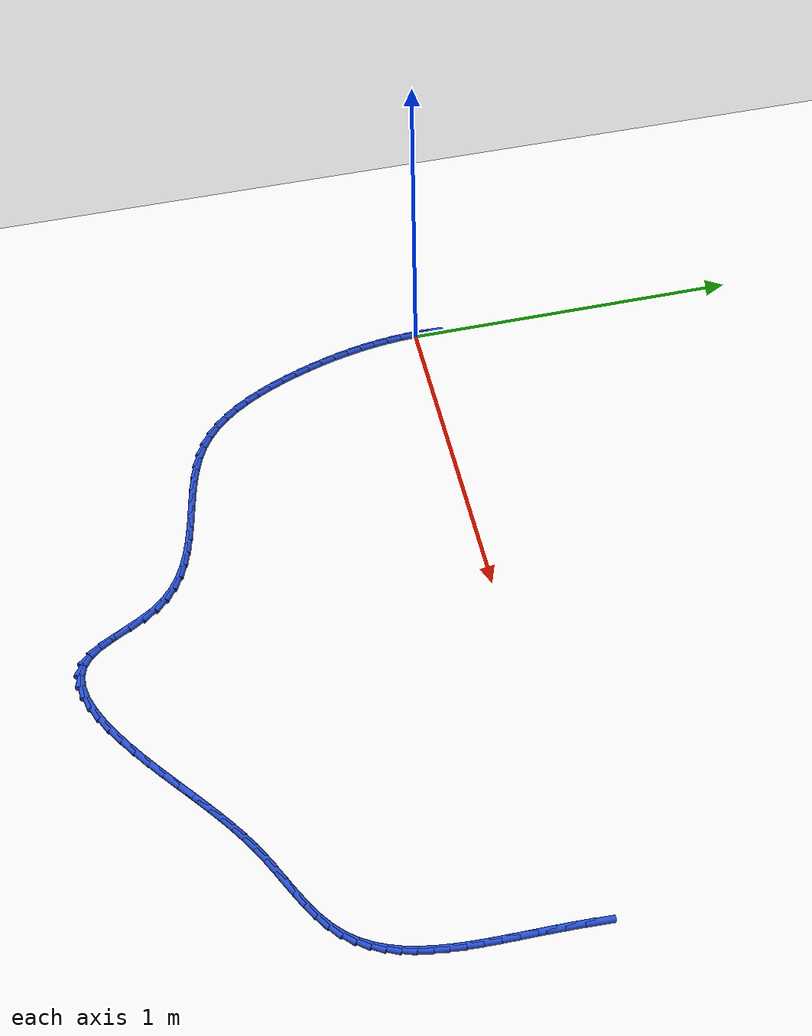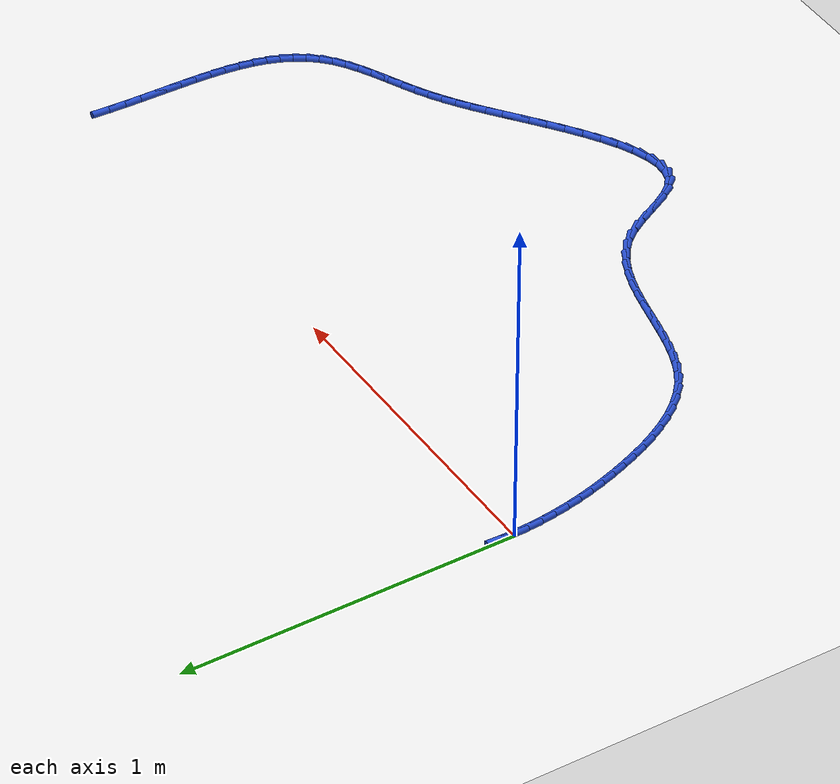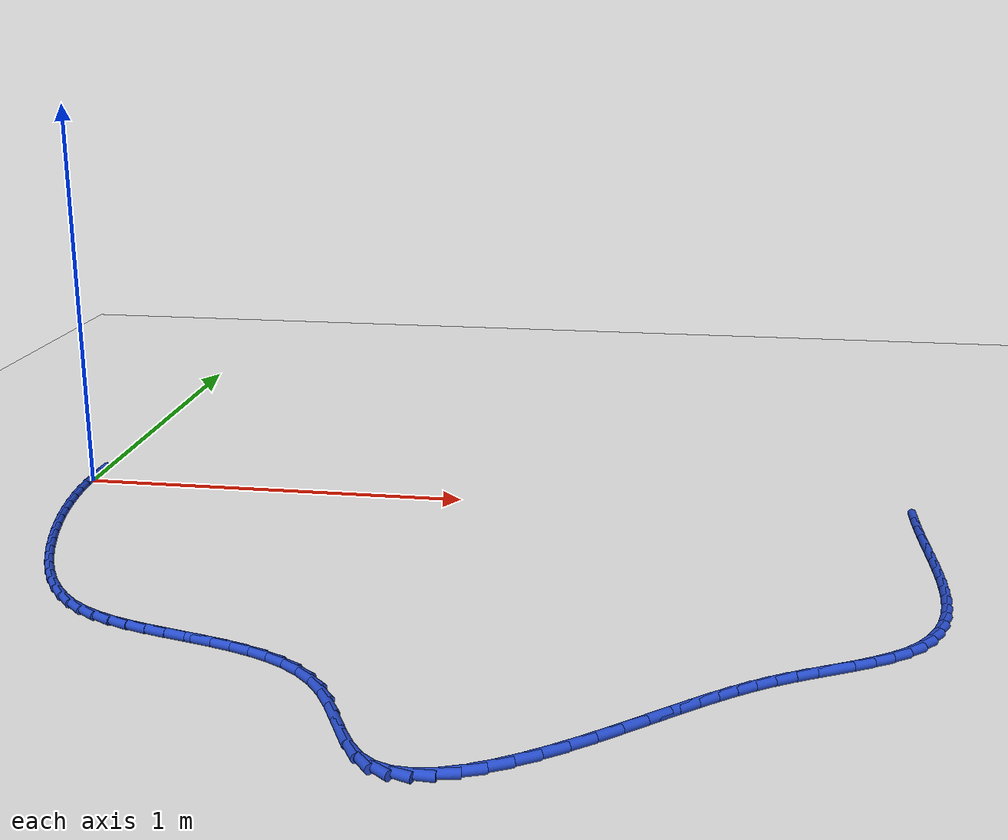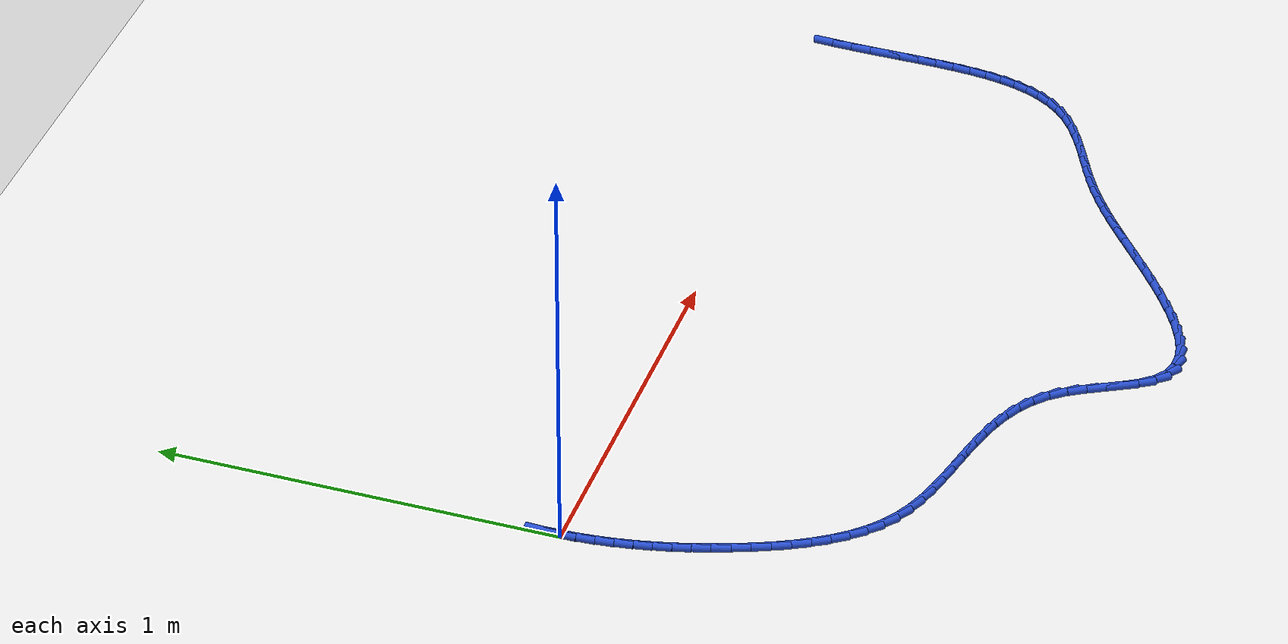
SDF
<sdf version="1.6">
 <world name="default">
  <model name="ground_plane">
   <static>1</static>
   <link name="link">
    <collision name="collision">
     <geometry><plane><normal>0 0 1</normal><size>100 100</size></plane></geometry>
     <surface><friction><ode><mu>100</mu><mu2>50</mu2></ode></friction></surface>
    </collision>
    <visual name="visual">
     <cast_shadows>0</cast_shadows>
     <geometry><plane><normal>0 0 1</normal><size>100 100</size></plane></geometry>
     <material>
      <script><uri>file://media/materials/scripts/gazebo.material</uri><name>Gazebo/WhiteGlow</name></script>
     </material>
    </visual>
   </link>
  </model>
  <model name="line">
   <link name="link_0">
    <pose>1.734723475976807e-17 -8.326672684688674e-17 0.01 0 1.57 -1.567020768808799</pose>
    <collision name="collision">
     <geometry><cylinder><radius>0.01</radius><length>0.08</length></cylinder></geometry>
    </collision>
    <visual name="visual">
     <material>
      <script><name>Gazebo/Blue</name><uri>file://media/materials/scripts/gazebo.material</uri></script>
     </material>
     <geometry><cylinder><radius>0.01</radius><length>0.08</length></cylinder></geometry>
    </visual>
   </link>
   <link name="link_1">
    <pose>-0.0001716113039923914 0.045453013618936146 0.01 0 1.57 1.531060291461525</pose>
    <collision name="collision">
     <geometry><cylinder><radius>0.01</radius><length>0.08</length></cylinder></geometry>
    </collision>
    <visual name="visual">
     <material>
      <script><name>Gazebo/Blue</name><uri>file://media/materials/scripts/gazebo.material</uri></script>
     </material>
     <geometry><cylinder><radius>0.01</radius><length>0.08</length></cylinder></geometry>
    </visual>
   </link>
   <link name="link_82">
    <pose>2.129652075663558 0.005812956764645327 0.01 0 1.57 1.5233397848434216</pose>
    <collision name="collision">
     <geometry><cylinder><radius>0.01</radius><length>0.08</length></cylinder></geometry>
    </collision>
    <visual name="visual">
     <material>
      <script><name>Gazebo/Blue</name><uri>file://media/materials/scripts/gazebo.material</uri></script>
     </material>
     <geometry><cylinder><radius>0.01</radius><length>0.08</length></cylinder></geometry>
    </visual>
   </link>
   <link name="link_83">
    <pose>2.1271858028386226 -0.046117103777714316 0.01 0 1.57 1.5434662299938682</pose>
    <collision name="collision">
     <geometry><cylinder><radius>0.01</radius><length>0.08</length></cylinder></geometry>
    </collision>
    <visual name="visual">
     <material>
      <script><name>Gazebo/Blue</name><uri>file://media/materials/scripts/gazebo.material</uri></script>
     </material>
     <geometry><cylinder><radius>0.01</radius><length>0.08</length></cylinder></geometry>
    </visual>
   </link>
   <link name="link_84">
    <pose>2.125784889536522 -0.0973633360265729 0.01 0 1.57 1.5560762229838552</pose>
    <collision name="collision">
     <geometry><cylinder><radius>0.01</radius><length>0.08</length></cylinder></geometry>
    </collision>
    <visual name="visual">
     <material>
      <script><name>Gazebo/Blue</name><uri>file://media/materials/scripts/gazebo.material</uri></script>
     </material>
     <geometry><cylinder><radius>0.01</radius><length>0.08</length></cylinder></geometry>
    </visual>
   </link>
   <link name="link_85">
    <pose>2.1250425952362004 -0.1477869400494698 0.01 0 1.57 1.5608816851195328</pose>
    <collision name="collision">
     <geometry><cylinder><radius>0.01</radius><length>0.08</length></cylinder></geometry>
    </collision>
    <visual name="visual">
     <material>
      <script><name>Gazebo/Blue</name><uri>file://media/materials/scripts/gazebo.material</uri></script>
     </material>
     <geometry><cylinder><radius>0.01</radius><length>0.08</length></cylinder></geometry>
    </visual>
   </link>
   <link name="link_86">
    <pose>2.124552179416604 -0.1972491159139445 0.01 0 1.57 1.5574544412542528</pose>
    <collision name="collision">
     <geometry><cylinder><radius>0.01</radius><length>0.08</length></cylinder></geometry>
    </collision>
    <visual name="visual">
     <material>
      <script><name>Gazebo/Blue</name><uri>file://media/materials/scripts/gazebo.material</uri></script>
     </material>
     <geometry><cylinder><radius>0.01</radius><length>0.08</length></cylinder></geometry>
    </visual>
   </link>
   <link name="link_87">
    <pose>2.123906901556674 -0.245611063687537 0.01 0 1.57 1.5451905992392905</pose>
    <collision name="collision">
     <geometry><cylinder><radius>0.01</radius><length>0.08</length></cylinder></geometry>
    </collision>
    <visual name="visual">
     <material>
      <script><name>Gazebo/Blue</name><uri>file://media/materials/scripts/gazebo.material</uri></script>
     </material>
     <geometry><cylinder><radius>0.01</radius><length>0.08</length></cylinder></geometry>
    </visual>
   </link>
   <link name="link_88">
    <pose>2.1227000211353575 -0.2927339834377851 0.01 0 1.57 1.523281146981574</pose>
    <collision name="collision">
     <geometry><cylinder><radius>0.01</radius><length>0.08</length></cylinder></geometry>
    </collision>
    <visual name="visual">
     <material>
      <script><name>Gazebo/Blue</name><uri>file://media/materials/scripts/gazebo.material</uri></script>
     </material>
     <geometry><cylinder><radius>0.01</radius><length>0.08</length></cylinder></geometry>
    </visual>
   </link>
   <link name="link_89">
    <pose>2.120524797631598 -0.3384790752322292 0.01 0 1.57 1.4906960799743154</pose>
    <collision name="collision">
     <geometry><cylinder><radius>0.01</radius><length>0.08</length></cylinder></geometry>
    </collision>
    <visual name="visual">
     <material>
      <script><name>Gazebo/Blue</name><uri>file://media/materials/scripts/gazebo.material</uri></script>
     </material>
     <geometry><cylinder><radius>0.01</radius><length>0.08</length></cylinder></geometry>
    </visual>
   </link>
   <link name="link_90">
    <pose>2.1169744905243406 -0.38270753913840844 0.01 0 1.57 1.446198459222886</pose>
    <collision name="collision">
     <geometry><cylinder><radius>0.01</radius><length>0.08</length></cylinder></geometry>
    </collision>
    <visual name="visual">
     <material>
      <script><name>Gazebo/Blue</name><uri>file://media/materials/scripts/gazebo.material</uri></script>
     </material>
     <geometry><cylinder><radius>0.01</radius><length>0.08</length></cylinder></geometry>
    </visual>
   </link>
   <link name="link_91">
    <pose>2.111642359292529 -0.42528057522386237 0.01 0 1.57 1.388419068163671</pose>
    <collision name="collision">
     <geometry><cylinder><radius>0.01</radius><length>0.08</length></cylinder></geometry>
    </collision>
    <visual name="visual">
     <material>
      <script><name>Gazebo/Blue</name><uri>file://media/materials/scripts/gazebo.material</uri></script>
     </material>
     <geometry><cylinder><radius>0.01</radius><length>0.08</length></cylinder></geometry>
    </visual>
   </link>
   <link name="link_92">
    <pose>2.104121663415107 -0.4660593835561309 0.01 0 1.57 1.316040137802648</pose>
    <collision name="collision">
     <geometry><cylinder><radius>0.01</radius><length>0.08</length></cylinder></geometry>
    </collision>
    <visual name="visual">
     <material>
      <script><name>Gazebo/Blue</name><uri>file://media/materials/scripts/gazebo.material</uri></script>
     </material>
     <geometry><cylinder><radius>0.01</radius><length>0.08</length></cylinder></geometry>
    </visual>
   </link>
   <link name="link_93">
    <pose>2.0940056623710213 -0.5049051642027524 0.01 0 1.57 1.2281464410266725</pose>
    <collision name="collision">
     <geometry><cylinder><radius>0.01</radius><length>0.08</length></cylinder></geometry>
    </collision>
    <visual name="visual">
     <material>
      <script><name>Gazebo/Blue</name><uri>file://media/materials/scripts/gazebo.material</uri></script>
     </material>
     <geometry><cylinder><radius>0.01</radius><length>0.08</length></cylinder></geometry>
    </visual>
   </link>
   <link name="link_94">
    <pose>2.080887615639214 -0.5416791172312665 0.01 0 1.57 1.1247720908689318</pose>
    <collision name="collision">
     <geometry><cylinder><radius>0.01</radius><length>0.08</length></cylinder></geometry>
    </collision>
    <visual name="visual">
     <material>
      <script><name>Gazebo/Blue</name><uri>file://media/materials/scripts/gazebo.material</uri></script>
     </material>
     <geometry><cylinder><radius>0.01</radius><length>0.08</length></cylinder></geometry>
    </visual>
   </link>
   <link name="link_95">
    <pose>2.0643607826986305 -0.5762424427092128 0.01 0 1.57 1.007552413118163</pose>
    <collision name="collision">
     <geometry><cylinder><radius>0.01</radius><length>0.08</length></cylinder></geometry>
    </collision>
    <visual name="visual">
     <material>
      <script><name>Gazebo/Blue</name><uri>file://media/materials/scripts/gazebo.material</uri></script>
     </material>
     <geometry><cylinder><radius>0.01</radius><length>0.08</length></cylinder></geometry>
    </visual>
   </link>
   <link name="link_96">
    <pose>2.0440184230282146 -0.6084563407041311 0.01 0 1.57 0.8801771689297132</pose>
    <collision name="collision">
     <geometry><cylinder><radius>0.01</radius><length>0.08</length></cylinder></geometry>
    </collision>
    <visual name="visual">
     <material>
      <script><name>Gazebo/Blue</name><uri>file://media/materials/scripts/gazebo.material</uri></script>
     </material>
     <geometry><cylinder><radius>0.01</radius><length>0.08</length></cylinder></geometry>
    </visual>
   </link>
   <link name="link_97">
    <pose>2.0194537961069123 -0.6381820112835599 0.01 0 1.57 0.7482018212566989</pose>
    <collision name="collision">
     <geometry><cylinder><radius>0.01</radius><length>0.08</length></cylinder></geometry>
    </collision>
    <visual name="visual">
     <material>
      <script><name>Gazebo/Blue</name><uri>file://media/materials/scripts/gazebo.material</uri></script>
     </material>
     <geometry><cylinder><radius>0.01</radius><length>0.08</length></cylinder></geometry>
    </visual>
   </link>
   <link name="link_98">
    <pose>1.990260271344808 -0.6652807052165536 0.01 0 1.57 0.6254789788486558</pose>
    <collision name="collision">
     <geometry><cylinder><radius>0.01</radius><length>0.08</length></cylinder></geometry>
    </collision>
    <visual name="visual">
     <material>
      <script><name>Gazebo/Blue</name><uri>file://media/materials/scripts/gazebo.material</uri></script>
     </material>
     <geometry><cylinder><radius>0.01</radius><length>0.08</length></cylinder></geometry>
    </visual>
   </link>
   <link name="link_99">
    <pose>1.9563588259445068 -0.6897647697770243 0.01 0 1.57 0.5361451305759493</pose>
    <collision name="collision">
     <geometry><cylinder><radius>0.01</radius><length>0.08</length></cylinder></geometry>
    </collision>
    <visual name="visual">
     <material>
      <script><name>Gazebo/Blue</name><uri>file://media/materials/scripts/gazebo.material</uri></script>
     </material>
     <geometry><cylinder><radius>0.01</radius><length>0.08</length></cylinder></geometry>
    </visual>
   </link>
   <link name="link_100">
    <pose>1.9187192430098214 -0.712130273656891 0.01 0 1.57 0.4782729850032048</pose>
    <collision name="collision">
     <geometry><cylinder><radius>0.01</radius><length>0.08</length></cylinder></geometry>
    </collision>
    <visual name="visual">
     <material>
      <script><name>Gazebo/Blue</name><uri>file://media/materials/scripts/gazebo.material</uri></script>
     </material>
     <geometry><cylinder><radius>0.01</radius><length>0.08</length></cylinder></geometry>
    </visual>
   </link>
   <link name="link_101">
    <pose>1.8785207509089303 -0.732969884127617 0.01 0 1.57 0.44651986947243366</pose>
    <collision name="collision">
     <geometry><cylinder><radius>0.01</radius><length>0.08</length></cylinder></geometry>
    </collision>
    <visual name="visual">
     <material>
      <script><name>Gazebo/Blue</name><uri>file://media/materials/scripts/gazebo.material</uri></script>
     </material>
     <geometry><cylinder><radius>0.01</radius><length>0.08</length></cylinder></geometry>
    </visual>
   </link>
   <link name="link_102">
    <pose>1.8369425780100148 -0.7528762684606651 0.01 0 1.57 0.43798513457771315</pose>
    <collision name="collision">
     <geometry><cylinder><radius>0.01</radius><length>0.08</length></cylinder></geometry>
    </collision>
    <visual name="visual">
     <material>
      <script><name>Gazebo/Blue</name><uri>file://media/materials/scripts/gazebo.material</uri></script>
     </material>
     <geometry><cylinder><radius>0.01</radius><length>0.08</length></cylinder></geometry>
    </visual>
   </link>
   <link name="link_103">
    <pose>1.795163952681254 -0.7724420939274994 0.01 0 1.57 0.4521709997397055</pose>
    <collision name="collision">
     <geometry><cylinder><radius>0.01</radius><length>0.08</length></cylinder></geometry>
    </collision>
    <visual name="visual">
     <material>
      <script><name>Gazebo/Blue</name><uri>file://media/materials/scripts/gazebo.material</uri></script>
     </material>
     <geometry><cylinder><radius>0.01</radius><length>0.08</length></cylinder></geometry>
    </visual>
   </link>
   <link name="link_104">
    <pose>1.7543641032908273 -0.7922600277995828 0.01 0 1.57 0.4883881022867168</pose>
    <collision name="collision">
     <geometry><cylinder><radius>0.01</radius><length>0.08</length></cylinder></geometry>
    </collision>
    <visual name="visual">
     <material>
      <script><name>Gazebo/Blue</name><uri>file://media/materials/scripts/gazebo.material</uri></script>
     </material>
     <geometry><cylinder><radius>0.01</radius><length>0.08</length></cylinder></geometry>
    </visual>
   </link>
   <link name="link_105">
    <pose>1.7155438419490239 -0.8128859871666528 0.01 0 1.57 0.5302619190916532</pose>
    <collision name="collision">
     <geometry><cylinder><radius>0.01</radius><length>0.08</length></cylinder></geometry>
    </collision>
    <visual name="visual">
     <material>
      <script><name>Gazebo/Blue</name><uri>file://media/materials/scripts/gazebo.material</uri></script>
     </material>
     <geometry><cylinder><radius>0.01</radius><length>0.08</length></cylinder></geometry>
    </visual>
   </link>
   <link name="link_106">
    <pose>1.6784693865973852 -0.8346215874051645 0.01 0 1.57 0.5682353158515105</pose>
    <collision name="collision">
     <geometry><cylinder><radius>0.01</radius><length>0.08</length></cylinder></geometry>
    </collision>
    <visual name="visual">
     <material>
      <script><name>Gazebo/Blue</name><uri>file://media/materials/scripts/gazebo.material</uri></script>
     </material>
     <geometry><cylinder><radius>0.01</radius><length>0.08</length></cylinder></geometry>
    </visual>
   </link>
   <link name="link_107">
    <pose>1.6423848524489308 -0.8576609011688411 0.01 0 1.57 0.6001671173091736</pose>
    <collision name="collision">
     <geometry><cylinder><radius>0.01</radius><length>0.08</length></cylinder></geometry>
    </collision>
    <visual name="visual">
     <material>
      <script><name>Gazebo/Blue</name><uri>file://media/materials/scripts/gazebo.material</uri></script>
     </material>
     <geometry><cylinder><radius>0.01</radius><length>0.08</length></cylinder></geometry>
    </visual>
   </link>
   <link name="link_108">
    <pose>1.606532492054795 -0.8821976174403032 0.01 0 1.57 0.6246689804075477</pose>
    <collision name="collision">
     <geometry><cylinder><radius>0.01</radius><length>0.08</length></cylinder></geometry>
    </collision>
    <visual name="visual">
     <material>
      <script><name>Gazebo/Blue</name><uri>file://media/materials/scripts/gazebo.material</uri></script>
     </material>
     <geometry><cylinder><radius>0.01</radius><length>0.08</length></cylinder></geometry>
    </visual>
   </link>
   <link name="link_109">
    <pose>1.5701545579661116 -0.9084254252021706 0.01 0 1.57 0.6412311048903735</pose>
    <collision name="collision">
     <geometry><cylinder><radius>0.01</radius><length>0.08</length></cylinder></geometry>
    </collision>
    <visual name="visual">
     <material>
      <script><name>Gazebo/Blue</name><uri>file://media/materials/scripts/gazebo.material</uri></script>
     </material>
     <geometry><cylinder><radius>0.01</radius><length>0.08</length></cylinder></geometry>
    </visual>
   </link>
   <link name="link_110">
    <pose>1.5324933027340157 -0.9365380134370638 0.01 0 1.57 0.6501067123821517</pose>
    <collision name="collision">
     <geometry><cylinder><radius>0.01</radius><length>0.08</length></cylinder></geometry>
    </collision>
    <visual name="visual">
     <material>
      <script><name>Gazebo/Blue</name><uri>file://media/materials/scripts/gazebo.material</uri></script>
     </material>
     <geometry><cylinder><radius>0.01</radius><length>0.08</length></cylinder></geometry>
    </visual>
   </link>
   <link name="link_111">
    <pose>1.4928029425904432 -0.9667174835301752 0.01 0 1.57 0.6505265121768896</pose>
    <collision name="collision">
     <geometry><cylinder><radius>0.01</radius><length>0.08</length></cylinder></geometry>
    </collision>
    <visual name="visual">
     <material>
      <script><name>Gazebo/Blue</name><uri>file://media/materials/scripts/gazebo.material</uri></script>
     </material>
     <geometry><cylinder><radius>0.01</radius><length>0.08</length></cylinder></geometry>
    </visual>
   </link>
   <link name="link_112">
    <pose>1.450872031333904 -0.9986283964278782 0.01 0 1.57 0.6414250067167556</pose>
    <collision name="collision">
     <geometry><cylinder><radius>0.01</radius><length>0.08</length></cylinder></geometry>
    </collision>
    <visual name="visual">
     <material>
      <script><name>Gazebo/Blue</name><uri>file://media/materials/scripts/gazebo.material</uri></script>
     </material>
     <geometry><cylinder><radius>0.01</radius><length>0.08</length></cylinder></geometry>
    </visual>
   </link>
   <link name="link_113">
    <pose>1.4072261975777722 -1.031221408520718 0.01 0 1.57 0.6230089487496081</pose>
    <collision name="collision">
     <geometry><cylinder><radius>0.01</radius><length>0.08</length></cylinder></geometry>
    </collision>
    <visual name="visual">
     <material>
      <script><name>Gazebo/Blue</name><uri>file://media/materials/scripts/gazebo.material</uri></script>
     </material>
     <geometry><cylinder><radius>0.01</radius><length>0.08</length></cylinder></geometry>
    </visual>
   </link>
   <link name="link_114">
    <pose>1.362444900773822 -1.0633950375560461 0.01 0 1.57 0.5945082238282193</pose>
    <collision name="collision">
     <geometry><cylinder><radius>0.01</radius><length>0.08</length></cylinder></geometry>
    </collision>
    <visual name="visual">
     <material>
      <script><name>Gazebo/Blue</name><uri>file://media/materials/scripts/gazebo.material</uri></script>
     </material>
     <geometry><cylinder><radius>0.01</radius><length>0.08</length></cylinder></geometry>
    </visual>
   </link>
   <link name="link_115">
    <pose>1.3171076003738285 -1.0940478012812156 0.01 0 1.57 0.5539722041844337</pose>
    <collision name="collision">
     <geometry><cylinder><radius>0.01</radius><length>0.08</length></cylinder></geometry>
    </collision>
    <visual name="visual">
     <material>
      <script><name>Gazebo/Blue</name><uri>file://media/materials/scripts/gazebo.material</uri></script>
     </material>
     <geometry><cylinder><radius>0.01</radius><length>0.08</length></cylinder></geometry>
    </visual>
   </link>
   <link name="link_116">
    <pose>1.2717937558295662 -1.1220782174435793 0.01 0 1.57 0.49794609221442165</pose>
    <collision name="collision">
     <geometry><cylinder><radius>0.01</radius><length>0.08</length></cylinder></geometry>
    </collision>
    <visual name="visual">
     <material>
      <script><name>Gazebo/Blue</name><uri>file://media/materials/scripts/gazebo.material</uri></script>
     </material>
     <geometry><cylinder><radius>0.01</radius><length>0.08</length></cylinder></geometry>
    </visual>
   </link>
   <link name="link_117">
    <pose>1.2270828265928109 -1.1463848037904882 0.01 0 1.57 0.4208159716850787</pose>
    <collision name="collision">
     <geometry><cylinder><radius>0.01</radius><length>0.08</length></cylinder></geometry>
    </collision>
    <visual name="visual">
     <material>
      <script><name>Gazebo/Blue</name><uri>file://media/materials/scripts/gazebo.material</uri></script>
     </material>
     <geometry><cylinder><radius>0.01</radius><length>0.08</length></cylinder></geometry>
    </visual>
   </link>
   <link name="link_118">
    <pose>1.1835542721153365 -1.1658660780692955 0.01 0 1.57 0.3138051435007959</pose>
    <collision name="collision">
     <geometry><cylinder><radius>0.01</radius><length>0.08</length></cylinder></geometry>
    </collision>
    <visual name="visual">
     <material>
      <script><name>Gazebo/Blue</name><uri>file://media/materials/scripts/gazebo.material</uri></script>
     </material>
     <geometry><cylinder><radius>0.01</radius><length>0.08</length></cylinder></geometry>
    </visual>
   </link>
   <link name="link_119">
    <pose>1.1417875518489182 -1.179420558027354 0.01 0 1.57 0.16404530588409083</pose>
    <collision name="collision">
     <geometry><cylinder><radius>0.01</radius><length>0.08</length></cylinder></geometry>
    </collision>
    <visual name="visual">
     <material>
      <script><name>Gazebo/Blue</name><uri>file://media/materials/scripts/gazebo.material</uri></script>
     </material>
     <geometry><cylinder><radius>0.01</radius><length>0.08</length></cylinder></geometry>
    </visual>
   </link>
   <link name="link_120">
    <pose>1.1023621252453304 -1.1859467614120154 0.01 0 1.57 -0.04389917961163358</pose>
    <collision name="collision">
     <geometry><cylinder><radius>0.01</radius><length>0.08</length></cylinder></geometry>
    </collision>
    <visual name="visual">
     <material>
      <script><name>Gazebo/Blue</name><uri>file://media/materials/scripts/gazebo.material</uri></script>
     </material>
     <geometry><cylinder><radius>0.01</radius><length>0.08</length></cylinder></geometry>
    </visual>
   </link>
   <link name="link_121">
    <pose>1.0658574517563473 -1.1843432059706327 0.01 0 1.57 -0.3171981993996654</pose>
    <collision name="collision">
     <geometry><cylinder><radius>0.01</radius><length>0.08</length></cylinder></geometry>
    </collision>
    <visual name="visual">
     <material>
      <script><name>Gazebo/Blue</name><uri>file://media/materials/scripts/gazebo.material</uri></script>
     </material>
     <geometry><cylinder><radius>0.01</radius><length>0.08</length></cylinder></geometry>
    </visual>
   </link>
   <link name="link_122">
    <pose>1.0328529908337452 -1.1735084094505577 0.01 0 1.57 -0.6306461035714594</pose>
    <collision name="collision">
     <geometry><cylinder><radius>0.01</radius><length>0.08</length></cylinder></geometry>
    </collision>
    <visual name="visual">
     <material>
      <script><name>Gazebo/Blue</name><uri>file://media/materials/scripts/gazebo.material</uri></script>
     </material>
     <geometry><cylinder><radius>0.01</radius><length>0.08</length></cylinder></geometry>
    </visual>
   </link>
   <link name="link_123">
    <pose>1.0039097734878453 -1.152376828309992 0.01 0 1.57 -0.8866794666084208</pose>
    <collision name="collision">
     <geometry><cylinder><radius>0.01</radius><length>0.08</length></cylinder></geometry>
    </collision>
    <visual name="visual">
     <material>
      <script><name>Gazebo/Blue</name><uri>file://media/materials/scripts/gazebo.material</uri></script>
     </material>
     <geometry><cylinder><radius>0.01</radius><length>0.08</length></cylinder></geometry>
    </visual>
   </link>
   <link name="link_124">
    <pose>0.978748166838934 -1.1215223618511334 0.01 0 1.57 -1.0265569156814591</pose>
    <collision name="collision">
     <geometry><cylinder><radius>0.01</radius><length>0.08</length></cylinder></geometry>
    </collision>
    <visual name="visual">
     <material>
      <script><name>Gazebo/Blue</name><uri>file://media/materials/scripts/gazebo.material</uri></script>
     </material>
     <geometry><cylinder><radius>0.01</radius><length>0.08</length></cylinder></geometry>
    </visual>
   </link>
   <link name="link_125">
    <pose>0.9559186125729972 -1.0838004702996444 0.01 0 1.57 -1.0833605252476097</pose>
    <collision name="collision">
     <geometry><cylinder><radius>0.01</radius><length>0.08</length></cylinder></geometry>
    </collision>
    <visual name="visual">
     <material>
      <script><name>Gazebo/Blue</name><uri>file://media/materials/scripts/gazebo.material</uri></script>
     </material>
     <geometry><cylinder><radius>0.01</radius><length>0.08</length></cylinder></geometry>
    </visual>
   </link>
   <link name="link_126">
    <pose>0.9338850084171891 -1.0422353898636867 0.01 0 1.57 -1.0777409259926571</pose>
    <collision name="collision">
     <geometry><cylinder><radius>0.01</radius><length>0.08</length></cylinder></geometry>
    </collision>
    <visual name="visual">
     <material>
      <script><name>Gazebo/Blue</name><uri>file://media/materials/scripts/gazebo.material</uri></script>
     </material>
     <geometry><cylinder><radius>0.01</radius><length>0.08</length></cylinder></geometry>
    </visual>
   </link>
   <link name="link_127">
    <pose>0.9111112520986672 -0.9998513567514264 0.01 0 1.57 -1.013302191026522</pose>
    <collision name="collision">
     <geometry><cylinder><radius>0.01</radius><length>0.08</length></cylinder></geometry>
    </collision>
    <visual name="visual">
     <material>
      <script><name>Gazebo/Blue</name><uri>file://media/materials/scripts/gazebo.material</uri></script>
     </material>
     <geometry><cylinder><radius>0.01</radius><length>0.08</length></cylinder></geometry>
    </visual>
   </link>
   <link name="link_128">
    <pose>0.8860612413445861 -0.9596726071710265 0.01 0 1.57 -0.8841445264104922</pose>
    <collision name="collision">
     <geometry><cylinder><radius>0.01</radius><length>0.08</length></cylinder></geometry>
    </collision>
    <visual name="visual">
     <material>
      <script><name>Gazebo/Blue</name><uri>file://media/materials/scripts/gazebo.material</uri></script>
     </material>
     <geometry><cylinder><radius>0.01</radius><length>0.08</length></cylinder></geometry>
    </visual>
   </link>
   <link name="link_129">
    <pose>0.8572842823048211 -0.9245668817225088 0.01 0 1.57 -0.728511228877901</pose>
    <collision name="collision">
     <geometry><cylinder><radius>0.01</radius><length>0.08</length></cylinder></geometry>
    </collision>
    <visual name="visual">
     <material>
      <script><name>Gazebo/Blue</name><uri>file://media/materials/scripts/gazebo.material</uri></script>
     </material>
     <geometry><cylinder><radius>0.01</radius><length>0.08</length></cylinder></geometry>
    </visual>
   </link>
   <link name="link_130">
    <pose>0.8244787444700181 -0.8952964686326896 0.01 0 1.57 -0.587471666807326</pose>
    <collision name="collision">
     <geometry><cylinder><radius>0.01</radius><length>0.08</length></cylinder></geometry>
    </collision>
    <visual name="visual">
     <material>
      <script><name>Gazebo/Blue</name><uri>file://media/materials/scripts/gazebo.material</uri></script>
     </material>
     <geometry><cylinder><radius>0.01</radius><length>0.08</length></cylinder></geometry>
    </visual>
   </link>
   <link name="link_131">
    <pose>0.7881659361142549 -0.8711157684836367 0.01 0 1.57 -0.4682993889830334</pose>
    <collision name="collision">
     <geometry><cylinder><radius>0.01</radius><length>0.08</length></cylinder></geometry>
    </collision>
    <visual name="visual">
     <material>
      <script><name>Gazebo/Blue</name><uri>file://media/materials/scripts/gazebo.material</uri></script>
     </material>
     <geometry><cylinder><radius>0.01</radius><length>0.08</length></cylinder></geometry>
    </visual>
   </link>
   <link name="link_132">
    <pose>0.7488850619793447 -0.8512463897918048 0.01 0 1.57 -0.3733047131123183</pose>
    <collision name="collision">
     <geometry><cylinder><radius>0.01</radius><length>0.08</length></cylinder></geometry>
    </collision>
    <visual name="visual">
     <material>
      <script><name>Gazebo/Blue</name><uri>file://media/materials/scripts/gazebo.material</uri></script>
     </material>
     <geometry><cylinder><radius>0.01</radius><length>0.08</length></cylinder></geometry>
    </visual>
   </link>
   <link name="link_133">
    <pose>0.7071753268070996 -0.8349099410736489 0.01 0 1.57 -0.3019882077966476</pose>
    <collision name="collision">
     <geometry><cylinder><radius>0.01</radius><length>0.08</length></cylinder></geometry>
    </collision>
    <visual name="visual">
     <material>
      <script><name>Gazebo/Blue</name><uri>file://media/materials/scripts/gazebo.material</uri></script>
     </material>
     <geometry><cylinder><radius>0.01</radius><length>0.08</length></cylinder></geometry>
    </visual>
   </link>
   <link name="link_134">
    <pose>0.6635759353393327 -0.8213280308456243 0.01 0 1.57 -0.2526753258704849</pose>
    <collision name="collision">
     <geometry><cylinder><radius>0.01</radius><length>0.08</length></cylinder></geometry>
    </collision>
    <visual name="visual">
     <material>
      <script><name>Gazebo/Blue</name><uri>file://media/materials/scripts/gazebo.material</uri></script>
     </material>
     <geometry><cylinder><radius>0.01</radius><length>0.08</length></cylinder></geometry>
    </visual>
   </link>
   <link name="link_135">
    <pose>0.6186260923178557 -0.8097222676241856 0.01 0 1.57 -0.2236378428991006</pose>
    <collision name="collision">
     <geometry><cylinder><radius>0.01</radius><length>0.08</length></cylinder></geometry>
    </collision>
    <visual name="visual">
     <material>
      <script><name>Gazebo/Blue</name><uri>file://media/materials/scripts/gazebo.material</uri></script>
     </material>
     <geometry><cylinder><radius>0.01</radius><length>0.08</length></cylinder></geometry>
    </visual>
   </link>
   <link name="link_136">
    <pose>0.5728650024844809 -0.7993142599257883 0.01 0 1.57 -0.2136756801188694</pose>
    <collision name="collision">
     <geometry><cylinder><radius>0.01</radius><length>0.08</length></cylinder></geometry>
    </collision>
    <visual name="visual">
     <material>
      <script><name>Gazebo/Blue</name><uri>file://media/materials/scripts/gazebo.material</uri></script>
     </material>
     <geometry><cylinder><radius>0.01</radius><length>0.08</length></cylinder></geometry>
    </visual>
   </link>
   <link name="link_137">
    <pose>0.5268318705810224 -0.7893256162668876 0.01 0 1.57 -0.2223608889553087</pose>
    <collision name="collision">
     <geometry><cylinder><radius>0.01</radius><length>0.08</length></cylinder></geometry>
    </collision>
    <visual name="visual">
     <material>
      <script><name>Gazebo/Blue</name><uri>file://media/materials/scripts/gazebo.material</uri></script>
     </material>
     <geometry><cylinder><radius>0.01</radius><length>0.08</length></cylinder></geometry>
    </visual>
   </link>
   <link name="link_138">
    <pose>0.48106590134929195 -0.778977945163938 0.01 0 1.57 -0.25010479623257204</pose>
    <collision name="collision">
     <geometry><cylinder><radius>0.01</radius><length>0.08</length></cylinder></geometry>
    </collision>
    <visual name="visual">
     <material>
      <script><name>Gazebo/Blue</name><uri>file://media/materials/scripts/gazebo.material</uri></script>
     </material>
     <geometry><cylinder><radius>0.01</radius><length>0.08</length></cylinder></geometry>
    </visual>
   </link>
   <link name="link_139">
    <pose>0.43610629953110197 -0.767492855133395 0.01 0 1.57 -0.29810508947272385</pose>
    <collision name="collision">
     <geometry><cylinder><radius>0.01</radius><length>0.08</length></cylinder></geometry>
    </collision>
    <visual name="visual">
     <material>
      <script><name>Gazebo/Blue</name><uri>file://media/materials/scripts/gazebo.material</uri></script>
     </material>
     <geometry><cylinder><radius>0.01</radius><length>0.08</length></cylinder></geometry>
    </visual>
   </link>
   <link name="link_140">
    <pose>0.39249226986826513 -0.7540919546917136 0.01 0 1.57 -0.3681210380503022</pose>
    <collision name="collision">
     <geometry><cylinder><radius>0.01</radius><length>0.08</length></cylinder></geometry>
    </collision>
    <visual name="visual">
     <material>
      <script><name>Gazebo/Blue</name><uri>file://media/materials/scripts/gazebo.material</uri></script>
     </material>
     <geometry><cylinder><radius>0.01</radius><length>0.08</length></cylinder></geometry>
    </visual>
   </link>
   <link name="link_141">
    <pose>0.3507630171025931 -0.7379968523553483 0.01 0 1.57 -0.46191729145301974</pose>
    <collision name="collision">
     <geometry><cylinder><radius>0.01</radius><length>0.08</length></cylinder></geometry>
    </collision>
    <visual name="visual">
     <material>
      <script><name>Gazebo/Blue</name><uri>file://media/materials/scripts/gazebo.material</uri></script>
     </material>
     <geometry><cylinder><radius>0.01</radius><length>0.08</length></cylinder></geometry>
    </visual>
   </link>
   <link name="link_142">
    <pose>0.3114577459758999 -0.718429156640755 0.01 0 1.57 -0.5794355476045915</pose>
    <collision name="collision">
     <geometry><cylinder><radius>0.01</radius><length>0.08</length></cylinder></geometry>
    </collision>
    <visual name="visual">
     <material>
      <script><name>Gazebo/Blue</name><uri>file://media/materials/scripts/gazebo.material</uri></script>
     </material>
     <geometry><cylinder><radius>0.01</radius><length>0.08</length></cylinder></geometry>
    </visual>
   </link>
   <link name="link_143">
    <pose>0.27510023586373505 -0.6946381833996537 0.01 0 1.57 -0.7022947750646478</pose>
    <collision name="collision">
     <geometry><cylinder><radius>0.01</radius><length>0.08</length></cylinder></geometry>
    </collision>
    <visual name="visual">
     <material>
      <script><name>Gazebo/Blue</name><uri>file://media/materials/scripts/gazebo.material</uri></script>
     </material>
     <geometry><cylinder><radius>0.01</radius><length>0.08</length></cylinder></geometry>
    </visual>
   </link>
   <link name="link_144">
    <pose>0.24185996848022745 -0.6665096446588433 0.01 0 1.57 -0.8116869734333069</pose>
    <collision name="collision">
     <geometry><cylinder><radius>0.01</radius><length>0.08</length></cylinder></geometry>
    </collision>
    <visual name="visual">
     <material>
      <script><name>Gazebo/Blue</name><uri>file://media/materials/scripts/gazebo.material</uri></script>
     </material>
     <geometry><cylinder><radius>0.01</radius><length>0.08</length></cylinder></geometry>
    </visual>
   </link>
   <link name="link_145">
    <pose>0.2115523975362647 -0.63456516425507 0.01 0 1.57 -0.9064295084287687</pose>
    <collision name="collision">
     <geometry><cylinder><radius>0.01</radius><length>0.08</length></cylinder></geometry>
    </collision>
    <visual name="visual">
     <material>
      <script><name>Gazebo/Blue</name><uri>file://media/materials/scripts/gazebo.material</uri></script>
     </material>
     <geometry><cylinder><radius>0.01</radius><length>0.08</length></cylinder></geometry>
    </visual>
   </link>
   <link name="link_146">
    <pose>0.18397760530811702 -0.5993539764872995 0.01 0 1.57 -0.9872577727392193</pose>
    <collision name="collision">
     <geometry><cylinder><radius>0.01</radius><length>0.08</length></cylinder></geometry>
    </collision>
    <visual name="visual">
     <material>
      <script><name>Gazebo/Blue</name><uri>file://media/materials/scripts/gazebo.material</uri></script>
     </material>
     <geometry><cylinder><radius>0.01</radius><length>0.08</length></cylinder></geometry>
    </visual>
   </link>
   <link name="link_147">
    <pose>0.1589356740720559 -0.5614253156544999 0.01 0 1.57 -1.0554849931564627</pose>
    <collision name="collision">
     <geometry><cylinder><radius>0.01</radius><length>0.08</length></cylinder></geometry>
    </collision>
    <visual name="visual">
     <material>
      <script><name>Gazebo/Blue</name><uri>file://media/materials/scripts/gazebo.material</uri></script>
     </material>
     <geometry><cylinder><radius>0.01</radius><length>0.08</length></cylinder></geometry>
    </visual>
   </link>
   <link name="link_148">
    <pose>0.13622668610435146 -0.5213284160556375 0.01 0 1.57 -1.1125711366123625</pose>
    <collision name="collision">
     <geometry><cylinder><radius>0.01</radius><length>0.08</length></cylinder></geometry>
    </collision>
    <visual name="visual">
     <material>
      <script><name>Gazebo/Blue</name><uri>file://media/materials/scripts/gazebo.material</uri></script>
     </material>
     <geometry><cylinder><radius>0.01</radius><length>0.08</length></cylinder></geometry>
    </visual>
   </link>
   <link name="link_149">
    <pose>0.11565072368127426 -0.47961251198967836 0.01 0 1.57 -1.159875381754947</pose>
    <collision name="collision">
     <geometry><cylinder><radius>0.01</radius><length>0.08</length></cylinder></geometry>
    </collision>
    <visual name="visual">
     <material>
      <script><name>Gazebo/Blue</name><uri>file://media/materials/scripts/gazebo.material</uri></script>
     </material>
     <geometry><cylinder><radius>0.01</radius><length>0.08</length></cylinder></geometry>
    </visual>
   </link>
   <link name="link_150">
    <pose>0.09700786907909496 -0.43682683775558967 0.01 0 1.57 -1.1985345983092244</pose>
    <collision name="collision">
     <geometry><cylinder><radius>0.01</radius><length>0.08</length></cylinder></geometry>
    </collision>
    <visual name="visual">
     <material>
      <script><name>Gazebo/Blue</name><uri>file://media/materials/scripts/gazebo.material</uri></script>
     </material>
     <geometry><cylinder><radius>0.01</radius><length>0.08</length></cylinder></geometry>
    </visual>
   </link>
   <link name="link_151">
    <pose>0.0800982045740839 -0.39352062765233725 0.01 0 1.57 -1.2300854252142503</pose>
    <collision name="collision">
     <geometry><cylinder><radius>0.01</radius><length>0.08</length></cylinder></geometry>
    </collision>
    <visual name="visual">
     <material>
      <script><name>Gazebo/Blue</name><uri>file://media/materials/scripts/gazebo.material</uri></script>
     </material>
     <geometry><cylinder><radius>0.01</radius><length>0.08</length></cylinder></geometry>
    </visual>
   </link>
   <link name="link_152">
    <pose>0.06473887587693421 -0.3501984032472269 0.01 0 1.57 -1.2608385739371748</pose>
    <collision name="collision">
     <geometry><cylinder><radius>0.01</radius><length>0.08</length></cylinder></geometry>
    </collision>
    <visual name="visual">
     <material>
      <script><name>Gazebo/Blue</name><uri>file://media/materials/scripts/gazebo.material</uri></script>
     </material>
     <geometry><cylinder><radius>0.01</radius><length>0.08</length></cylinder></geometry>
    </visual>
   </link>
   <link name="link_153">
    <pose>0.05089547149154696 -0.3069757091515862 0.01 0 1.57 -1.2937724433957278</pose>
    <collision name="collision">
     <geometry><cylinder><radius>0.01</radius><length>0.08</length></cylinder></geometry>
    </collision>
    <visual name="visual">
     <material>
      <script><name>Gazebo/Blue</name><uri>file://media/materials/scripts/gazebo.material</uri></script>
     </material>
     <geometry><cylinder><radius>0.01</radius><length>0.08</length></cylinder></geometry>
    </visual>
   </link>
   <link name="link_154">
    <pose>0.03860998153941325 -0.26376788848498095 0.01 0 1.57 -1.3287525350067202</pose>
    <collision name="collision">
     <geometry><cylinder><radius>0.01</radius><length>0.08</length></cylinder></geometry>
    </collision>
    <visual name="visual">
     <material>
      <script><name>Gazebo/Blue</name><uri>file://media/materials/scripts/gazebo.material</uri></script>
     </material>
     <geometry><cylinder><radius>0.01</radius><length>0.08</length></cylinder></geometry>
    </visual>
   </link>
   <link name="link_155">
    <pose>0.027925026646873515 -0.22048863220285603 0.01 0 1.57 -1.3655681015741956</pose>
    <collision name="collision">
     <geometry><cylinder><radius>0.01</radius><length>0.08</length></cylinder></geometry>
    </collision>
    <visual name="visual">
     <material>
      <script><name>Gazebo/Blue</name><uri>file://media/materials/scripts/gazebo.material</uri></script>
     </material>
     <geometry><cylinder><radius>0.01</radius><length>0.08</length></cylinder></geometry>
    </visual>
   </link>
   <link name="link_156">
    <pose>0.018883227440268057 -0.1770516312606554 0.01 0 1.57 -1.4039586710696494</pose>
    <collision name="collision">
     <geometry><cylinder><radius>0.01</radius><length>0.08</length></cylinder></geometry>
    </collision>
    <visual name="visual">
     <material>
      <script><name>Gazebo/Blue</name><uri>file://media/materials/scripts/gazebo.material</uri></script>
     </material>
     <geometry><cylinder><radius>0.01</radius><length>0.08</length></cylinder></geometry>
    </visual>
   </link>
   <link name="link_157">
    <pose>0.011527204545937638 -0.13337057661382523 0.01 0 1.57 -1.4436190397013053</pose>
    <collision name="collision">
     <geometry><cylinder><radius>0.01</radius><length>0.08</length></cylinder></geometry>
    </collision>
    <visual name="visual">
     <material>
      <script><name>Gazebo/Blue</name><uri>file://media/materials/scripts/gazebo.material</uri></script>
     </material>
     <geometry><cylinder><radius>0.01</radius><length>0.08</length></cylinder></geometry>
    </visual>
   </link>
   <link name="link_158">
    <pose>0.0058995785902225375 -0.08935915921780951 0.01 0 1.57 -1.4842077467541506</pose>
    <collision name="collision">
     <geometry><cylinder><radius>0.01</radius><length>0.08</length></cylinder></geometry>
    </collision>
    <visual name="visual">
     <material>
      <script><name>Gazebo/Blue</name><uri>file://media/materials/scripts/gazebo.material</uri></script>
     </material>
     <geometry><cylinder><radius>0.01</radius><length>0.08</length></cylinder></geometry>
    </visual>
   </link>
   <link name="link_159">
    <pose>0.002042970199463181 -0.044931070028052904 0.01 0 1.57 -1.525358636491854</pose>
    <collision name="collision">
     <geometry><cylinder><radius>0.01</radius><length>0.08</length></cylinder></geometry>
    </collision>
    <visual name="visual">
     <material>
      <script><name>Gazebo/Blue</name><uri>file://media/materials/scripts/gazebo.material</uri></script>
     </material>
     <geometry><cylinder><radius>0.01</radius><length>0.08</length></cylinder></geometry>
    </visual>
   </link>
   <link name="link_160">
    <pose>1.8214596497756474e-17 -1.6653345369377348e-16 0.01 0 1.57 -1.5666946383389444</pose>
    <collision name="collision">
     <geometry><cylinder><radius>0.01</radius><length>0.08</length></cylinder></geometry>
    </collision>
    <visual name="visual">
     <material>
      <script><name>Gazebo/Blue</name><uri>file://media/materials/scripts/gazebo.material</uri></script>
     </material>
     <geometry><cylinder><radius>0.01</radius><length>0.08</length></cylinder></geometry>
    </visual>
   </link>
  </model>
 </world>
</sdf>
